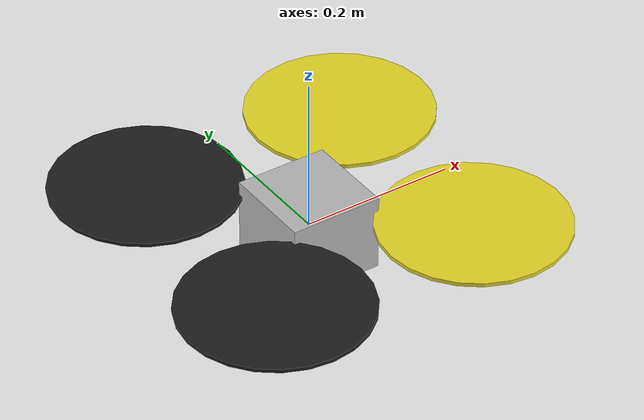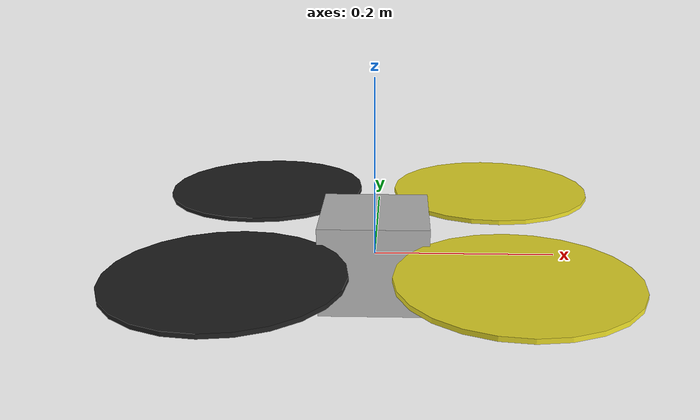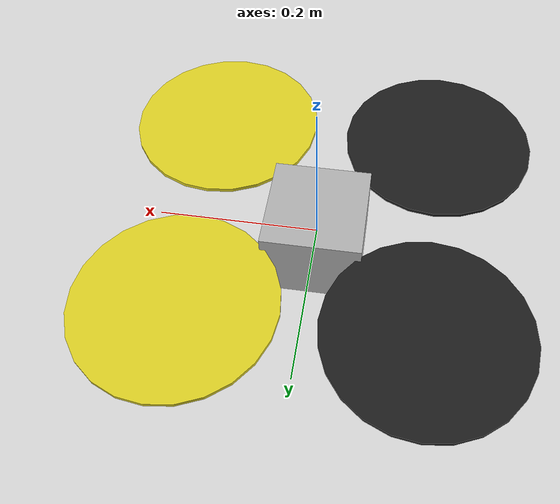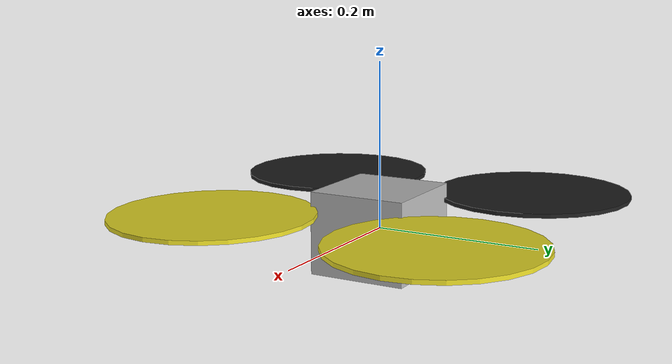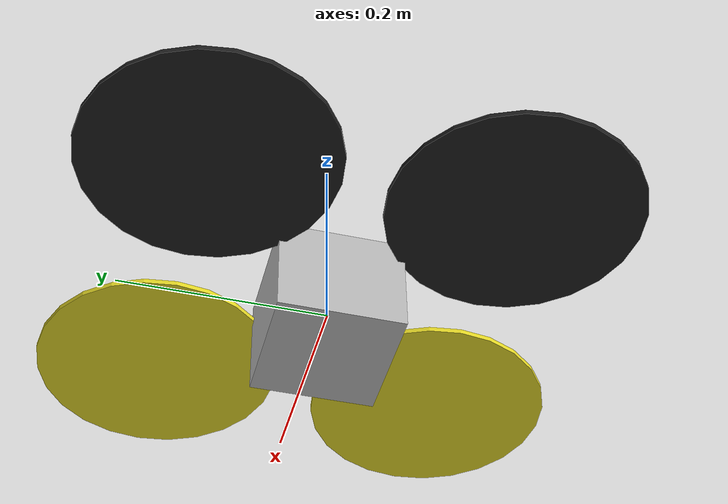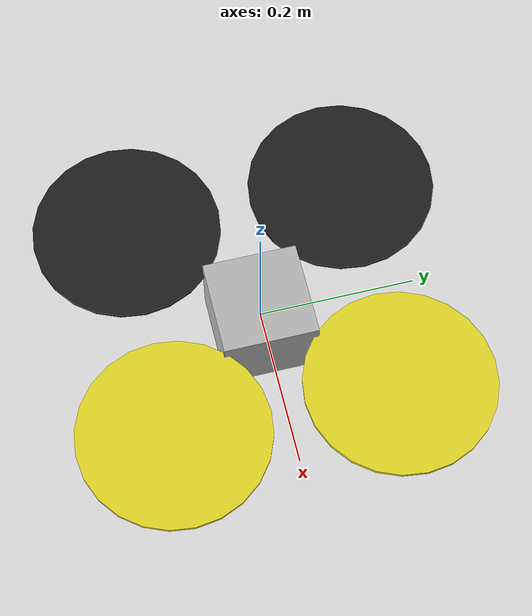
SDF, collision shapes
<sdf version='1.6'>
  <model name='erlecopter'>
    <link name='base_link'>
      <pose frame=''>0 0 0 0 -0 0</pose>
      <inertial>
        <pose frame=''>0 0 0 0 -0 0</pose>
        <mass>1.1</mass>
        <inertia>
          <ixx>0.0347563</ixx>
          <ixy>0</ixy>
          <ixz>0</ixz>
          <iyy>0.0458929</iyy>
          <iyz>0</iyz>
          <izz>0.0977</izz>
        </inertia>
      </inertial>
      <collision name='base_link_inertia_collision'>
        <pose frame=''>0 0 0 0 -0 0</pose>
        <geometry>
          <box>
            <size>0.12 0.12 0.1</size>
          </box>
        </geometry>
        <surface>
          <contact>
            <ode>
              <min_depth>0.001</min_depth>
              <max_vel>0</max_vel>
            </ode>
          </contact>
          <friction>
            <ode/>
          </friction>
        </surface>
      </collision>
      <visual name='base_link_inertia_visual'>
        <pose frame=''>0 0 0 0 -0 0</pose>
        <geometry>
          <mesh>
            <scale>1 1 1</scale>
            <uri>model://erlecopter/meshes/erlecopter.dae</uri>
          </mesh>
        </geometry>
      </visual>
      <gravity>1</gravity>
      <velocity_decay/>
    </link>
    <link name='/imu_link'>
      <pose frame=''>0 0 0 0 -0 0</pose>
      <inertial>
        <pose frame=''>0 0 0 0 -0 0</pose>
        <mass>0.015</mass>
        <inertia>
          <ixx>1e-05</ixx>
          <ixy>0</ixy>
          <ixz>0</ixz>
          <iyy>1e-05</iyy>
          <iyz>0</iyz>
          <izz>1e-05</izz>
        </inertia>
      </inertial>
    </link>
    <joint name='/imu_joint' type='revolute'>
      <child>/imu_link</child>
      <parent>base_link</parent>
      <axis>
        <xyz>1 0 0</xyz>
        <limit>
          <lower>0</lower>
          <upper>0</upper>
          <effort>0</effort>
          <velocity>0</velocity>
        </limit>
        <dynamics>
          <spring_reference>0</spring_reference>
          <spring_stiffness>0</spring_stiffness>
        </dynamics>
        <use_parent_model_frame>1</use_parent_model_frame>
      </axis>
    </joint>
    <link name='rotor_0'>
      <pose frame=''>0.141 -0.141 0.03 0 -0 0</pose>
      <inertial>
        <pose frame=''>0 0 0 0 -0 0</pose>
        <mass>0.005</mass>
        <inertia>
          <ixx>9.75e-07</ixx>
          <ixy>0</ixy>
          <ixz>0</ixz>
          <iyy>0.000240038</iyy>
          <iyz>0</iyz>
          <izz>0.000240937</izz>
        </inertia>
      </inertial>
      <collision name='rotor_0_collision'>
        <pose frame=''>0 0 0 0 -0 0</pose>
        <geometry>
          <cylinder>
            <length>0.005</length>
            <radius>0.12</radius>
          </cylinder>
        </geometry>
        <surface>
          <contact>
            <ode/>
          </contact>
          <friction>
            <ode/>
          </friction>
        </surface>
      </collision>
      <visual name='rotor_0_visual'>
        <pose frame=''>0 0 0 0 -0 0</pose>
        <geometry>
          <mesh>
            <scale>1 1 1</scale>
            <uri>model://erlecopter/meshes/erlecopter_prop_ccw.dae</uri>
          </mesh>
        </geometry>
        <material>
          <script>
            <name>Gazebo/Yellow</name>
            <uri>file://media/materials/scripts/gazebo.material</uri>
          </script>
        </material>
      </visual>
      <gravity>1</gravity>
      <velocity_decay/>
    </link>
    <joint name='rotor_0_joint' type='revolute'>
      <child>rotor_0</child>
      <parent>base_link</parent>
      <axis>
        <xyz>0 0 1</xyz>
        <limit>
          <lower>-1e+16</lower>
          <upper>1e+16</upper>
        </limit>
        <dynamics>
          <spring_reference>0</spring_reference>
          <spring_stiffness>0</spring_stiffness>
        </dynamics>
        <use_parent_model_frame>1</use_parent_model_frame>
      </axis>
    </joint>
    <link name='rotor_1'>
      <pose frame=''>-0.141 0.141 0.03 0 -0 0</pose>
      <inertial>
        <pose frame=''>0 0 0 0 -0 0</pose>
        <mass>0.005</mass>
        <inertia>
          <ixx>9.75e-07</ixx>
          <ixy>0</ixy>
          <ixz>0</ixz>
          <iyy>0.000240038</iyy>
          <iyz>0</iyz>
          <izz>0.000240937</izz>
        </inertia>
      </inertial>
      <collision name='rotor_1_collision'>
        <pose frame=''>0 0 0 0 -0 0</pose>
        <geometry>
          <cylinder>
            <length>0.005</length>
            <radius>0.12</radius>
          </cylinder>
        </geometry>
        <surface>
          <contact>
            <ode/>
          </contact>
          <friction>
            <ode/>
          </friction>
        </surface>
      </collision>
      <visual name='rotor_1_visual'>
        <pose frame=''>0 0 0 0 -0 0</pose>
        <geometry>
          <mesh>
            <scale>1 1 1</scale>
            <uri>model://erlecopter/meshes/erlecopter_prop_ccw.dae</uri>
          </mesh>
        </geometry>
        <material>
          <script>
            <name>Gazebo/Black</name>
            <uri>file://media/materials/scripts/gazebo.material</uri>
          </script>
        </material>
      </visual>
      <gravity>1</gravity>
      <velocity_decay/>
    </link>
    <joint name='rotor_1_joint' type='revolute'>
      <child>rotor_1</child>
      <parent>base_link</parent>
      <axis>
        <xyz>0 0 1</xyz>
        <limit>
          <lower>-1e+16</lower>
          <upper>1e+16</upper>
        </limit>
        <dynamics>
          <spring_reference>0</spring_reference>
          <spring_stiffness>0</spring_stiffness>
        </dynamics>
        <use_parent_model_frame>1</use_parent_model_frame>
      </axis>
    </joint>
    <link name='rotor_2'>
      <pose frame=''>0.141 0.141 0.03 0 -0 0</pose>
      <inertial>
        <pose frame=''>0 0 0 0 -0 0</pose>
        <mass>0.005</mass>
        <inertia>
          <ixx>9.75e-07</ixx>
          <ixy>0</ixy>
          <ixz>0</ixz>
          <iyy>0.000240038</iyy>
          <iyz>0</iyz>
          <izz>0.000240937</izz>
        </inertia>
      </inertial>
      <collision name='rotor_2_collision'>
        <pose frame=''>0 0 0 0 -0 0</pose>
        <geometry>
          <cylinder>
            <length>0.005</length>
            <radius>0.12</radius>
          </cylinder>
        </geometry>
        <surface>
          <contact>
            <ode/>
          </contact>
          <friction>
            <ode/>
          </friction>
        </surface>
      </collision>
      <visual name='rotor_2_visual'>
        <pose frame=''>0 0 0 0 -0 0</pose>
        <geometry>
          <mesh>
            <scale>1 1 1</scale>
            <uri>model://erlecopter/meshes/erlecopter_prop_cw.dae</uri>
          </mesh>
        </geometry>
        <material>
          <script>
            <name>Gazebo/Yellow</name>
            <uri>file://media/materials/scripts/gazebo.material</uri>
          </script>
        </material>
      </visual>
      <gravity>1</gravity>
      <velocity_decay/>
    </link>
    <joint name='rotor_2_joint' type='revolute'>
      <child>rotor_2</child>
      <parent>base_link</parent>
      <axis>
        <xyz>0 0 1</xyz>
        <limit>
          <lower>-1e+16</lower>
          <upper>1e+16</upper>
        </limit>
        <dynamics>
          <spring_reference>0</spring_reference>
          <spring_stiffness>0</spring_stiffness>
        </dynamics>
        <use_parent_model_frame>1</use_parent_model_frame>
      </axis>
    </joint>
    <link name='rotor_3'>
      <pose frame=''>-0.141 -0.141 0.03 0 -0 0</pose>
      <inertial>
        <pose frame=''>0 0 0 0 -0 0</pose>
        <mass>0.005</mass>
        <inertia>
          <ixx>9.75e-07</ixx>
          <ixy>0</ixy>
          <ixz>0</ixz>
          <iyy>0.000240038</iyy>
          <iyz>0</iyz>
          <izz>0.000240937</izz>
        </inertia>
      </inertial>
      <collision name='rotor_3_collision'>
        <pose frame=''>0 0 0 0 -0 0</pose>
        <geometry>
          <cylinder>
            <length>0.005</length>
            <radius>0.12</radius>
          </cylinder>
        </geometry>
        <surface>
          <contact>
            <ode/>
          </contact>
          <friction>
            <ode/>
          </friction>
        </surface>
      </collision>
      <visual name='rotor_3_visual'>
        <pose frame=''>0 0 0 0 -0 0</pose>
        <geometry>
          <mesh>
            <scale>1 1 1</scale>
            <uri>model://erlecopter/meshes/erlecopter_prop_cw.dae</uri>
          </mesh>
        </geometry>
        <material>
          <script>
            <name>Gazebo/Black</name>
            <uri>file://media/materials/scripts/gazebo.material</uri>
          </script>
        </material>
      </visual>
      <gravity>1</gravity>
      <velocity_decay/>
    </link>
    <joint name='rotor_3_joint' type='revolute'>
      <child>rotor_3</child>
      <parent>base_link</parent>
      <axis>
        <xyz>0 0 1</xyz>
        <limit>
          <lower>-1e+16</lower>
          <upper>1e+16</upper>
        </limit>
        <dynamics>
          <spring_reference>0</spring_reference>
          <spring_stiffness>0</spring_stiffness>
        </dynamics>
        <use_parent_model_frame>1</use_parent_model_frame>
      </axis>
    </joint>
    <plugin name='rosbag' filename='librotors_gazebo_multirotor_base_plugin.so'>
      <robotNamespace/>
      <linkName>base_link</linkName>
      <rotorVelocitySlowdownSim>10</rotorVelocitySlowdownSim>
    </plugin>
    <plugin name='front_right_motor_model' filename='librotors_gazebo_motor_model.so'>
      <robotNamespace/>
      <jointName>rotor_0_joint</jointName>
      <linkName>rotor_0</linkName>
      <turningDirection>ccw</turningDirection>
      <timeConstantUp>0.0125</timeConstantUp>
      <timeConstantDown>0.025</timeConstantDown>
      <maxRotVelocity>838</maxRotVelocity>
      <motorConstant>8.54858e-06</motorConstant>
      <momentConstant>0.016</momentConstant>
      <commandSubTopic>/gazebo/command/motor_speed</commandSubTopic>
      <motorNumber>0</motorNumber>
      <rotorDragCoefficient>8.06428e-05</rotorDragCoefficient>
      <rollingMomentCoefficient>1e-06</rollingMomentCoefficient>
      <motorSpeedPubTopic>/motor_speed/0</motorSpeedPubTopic>
      <rotorVelocitySlowdownSim>10</rotorVelocitySlowdownSim>
    </plugin>
    <plugin name='back_left_motor_model' filename='librotors_gazebo_motor_model.so'>
      <robotNamespace/>
      <jointName>rotor_1_joint</jointName>
      <linkName>rotor_1</linkName>
      <turningDirection>ccw</turningDirection>
      <timeConstantUp>0.0125</timeConstantUp>
      <timeConstantDown>0.025</timeConstantDown>
      <maxRotVelocity>838</maxRotVelocity>
      <motorConstant>8.54858e-06</motorConstant>
      <momentConstant>0.016</momentConstant>
      <commandSubTopic>/gazebo/command/motor_speed</commandSubTopic>
      <motorNumber>1</motorNumber>
      <rotorDragCoefficient>8.06428e-05</rotorDragCoefficient>
      <rollingMomentCoefficient>1e-06</rollingMomentCoefficient>
      <motorSpeedPubTopic>/motor_speed/1</motorSpeedPubTopic>
      <rotorVelocitySlowdownSim>10</rotorVelocitySlowdownSim>
    </plugin>
    <plugin name='front_left_motor_model' filename='librotors_gazebo_motor_model.so'>
      <robotNamespace/>
      <jointName>rotor_2_joint</jointName>
      <linkName>rotor_2</linkName>
      <turningDirection>cw</turningDirection>
      <timeConstantUp>0.0125</timeConstantUp>
      <timeConstantDown>0.025</timeConstantDown>
      <maxRotVelocity>838</maxRotVelocity>
      <motorConstant>8.54858e-06</motorConstant>
      <momentConstant>0.016</momentConstant>
      <commandSubTopic>/gazebo/command/motor_speed</commandSubTopic>
      <motorNumber>2</motorNumber>
      <rotorDragCoefficient>8.06428e-05</rotorDragCoefficient>
      <rollingMomentCoefficient>1e-06</rollingMomentCoefficient>
      <motorSpeedPubTopic>/motor_speed/2</motorSpeedPubTopic>
      <rotorVelocitySlowdownSim>10</rotorVelocitySlowdownSim>
    </plugin>
    <plugin name='back_right_motor_model' filename='librotors_gazebo_motor_model.so'>
      <robotNamespace/>
      <jointName>rotor_3_joint</jointName>
      <linkName>rotor_3</linkName>
      <turningDirection>cw</turningDirection>
      <timeConstantUp>0.0125</timeConstantUp>
      <timeConstantDown>0.025</timeConstantDown>
      <maxRotVelocity>838</maxRotVelocity>
      <motorConstant>8.54858e-06</motorConstant>
      <momentConstant>0.016</momentConstant>
      <commandSubTopic>/gazebo/command/motor_speed</commandSubTopic>
      <motorNumber>3</motorNumber>
      <rotorDragCoefficient>8.06428e-05</rotorDragCoefficient>
      <rollingMomentCoefficient>1e-06</rollingMomentCoefficient>
      <motorSpeedPubTopic>/motor_speed/3</motorSpeedPubTopic>
      <rotorVelocitySlowdownSim>10</rotorVelocitySlowdownSim>
    </plugin>
    <plugin name='mavlink_interface' filename='librotors_gazebo_mavlink_interface.so'>
      <robotNamespace/>
      <imuSubTopic>/imu</imuSubTopic>
      <motorSpeedCommandPubTopic>/gazebo/command/motor_speed</motorSpeedCommandPubTopic>
    </plugin>
    <static>0</static>
    <plugin name='rotors_gazebo_imu_plugin' filename='librotors_gazebo_imu_plugin.so'>
      <robotNamespace/>
      <linkName>/imu_link</linkName>
      <imuTopic>/imu</imuTopic>
      <gyroscopeNoiseDensity>0.0003394</gyroscopeNoiseDensity>
      <gyroscopeRandomWalk>3.8785e-05</gyroscopeRandomWalk>
      <gyroscopeBiasCorrelationTime>1000.0</gyroscopeBiasCorrelationTime>
      <gyroscopeTurnOnBiasSigma>0.0087</gyroscopeTurnOnBiasSigma>
      <accelerometerNoiseDensity>0.004</accelerometerNoiseDensity>
      <accelerometerRandomWalk>0.006</accelerometerRandomWalk>
      <accelerometerBiasCorrelationTime>300.0</accelerometerBiasCorrelationTime>
      <accelerometerTurnOnBiasSigma>0.196</accelerometerTurnOnBiasSigma>
    </plugin>
  </model>
</sdf>
